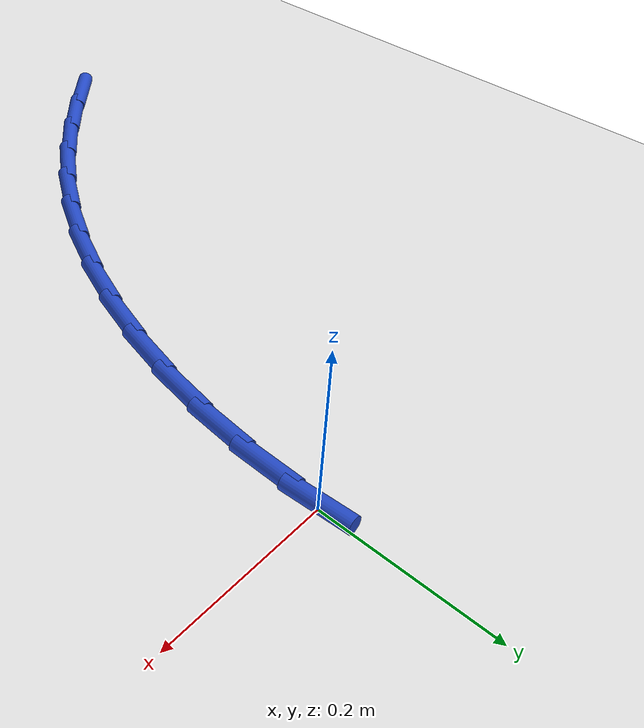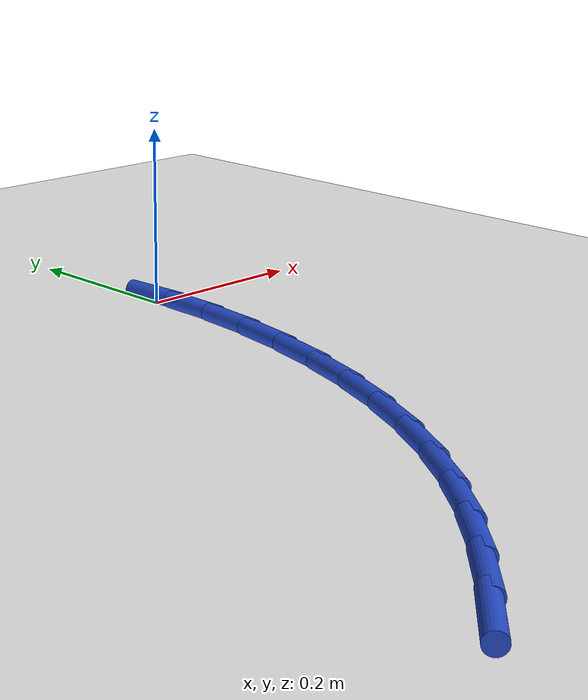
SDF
<sdf version="1.6">
 <world name="default">
  <model name="ground_plane">
   <static>1</static>
   <link name="link">
    <collision name="collision">
     <geometry><plane><normal>0 0 1</normal><size>100 100</size></plane></geometry>
     <surface><friction><ode><mu>100</mu><mu2>50</mu2></ode></friction></surface>
    </collision>
    <visual name="visual">
     <cast_shadows>0</cast_shadows>
     <geometry><plane><normal>0 0 1</normal><size>100 100</size></plane></geometry>
     <material>
      <script><uri>file://media/materials/scripts/gazebo.material</uri><name>Gazebo/WhiteGlow</name></script>
     </material>
    </visual>
   </link>
  </model>
  <model name="line">
   <link name="link_0">
    <pose>3.122502256758253e-17 -1.3877787807814457e-17 0.01 0 1.57 -1.5113080922059479</pose>
    <collision name="collision">
     <geometry><cylinder><radius>0.01</radius><length>0.08</length></cylinder></geometry>
    </collision>
    <visual name="visual">
     <material>
      <script><name>Gazebo/Blue</name><uri>file://media/materials/scripts/gazebo.material</uri></script>
     </material>
     <geometry><cylinder><radius>0.01</radius><length>0.08</length></cylinder></geometry>
    </visual>
   </link>
   <link name="link_97">
    <pose>-0.3396932151286978 -0.7311317947886793 0.01 0 1.57 0.7152479905481852</pose>
    <collision name="collision">
     <geometry><cylinder><radius>0.01</radius><length>0.08</length></cylinder></geometry>
    </collision>
    <visual name="visual">
     <material>
      <script><name>Gazebo/Blue</name><uri>file://media/materials/scripts/gazebo.material</uri></script>
     </material>
     <geometry><cylinder><radius>0.01</radius><length>0.08</length></cylinder></geometry>
    </visual>
   </link>
   <link name="link_98">
    <pose>-0.2917630894548138 -0.6894951223327309 0.01 0 1.57 0.7682784487154332</pose>
    <collision name="collision">
     <geometry><cylinder><radius>0.01</radius><length>0.08</length></cylinder></geometry>
    </collision>
    <visual name="visual">
     <material>
      <script><name>Gazebo/Blue</name><uri>file://media/materials/scripts/gazebo.material</uri></script>
     </material>
     <geometry><cylinder><radius>0.01</radius><length>0.08</length></cylinder></geometry>
    </visual>
   </link>
   <link name="link_99">
    <pose>-0.2464336082911041 -0.6456917197996723 0.01 0 1.57 0.8317342847563973</pose>
    <collision name="collision">
     <geometry><cylinder><radius>0.01</radius><length>0.08</length></cylinder></geometry>
    </collision>
    <visual name="visual">
     <material>
      <script><name>Gazebo/Blue</name><uri>file://media/materials/scripts/gazebo.material</uri></script>
     </material>
     <geometry><cylinder><radius>0.01</radius><length>0.08</length></cylinder></geometry>
    </visual>
   </link>
   <link name="link_100">
    <pose>-0.20411640342574225 -0.5992592537875061 0.01 0 1.57 0.9050557247924207</pose>
    <collision name="collision">
     <geometry><cylinder><radius>0.01</radius><length>0.08</length></cylinder></geometry>
    </collision>
    <visual name="visual">
     <material>
      <script><name>Gazebo/Blue</name><uri>file://media/materials/scripts/gazebo.material</uri></script>
     </material>
     <geometry><cylinder><radius>0.01</radius><length>0.08</length></cylinder></geometry>
    </visual>
   </link>
   <link name="link_101">
    <pose>-0.16522310664690412 -0.5497353908942367 0.01 0 1.57 0.9858927928266926</pose>
    <collision name="collision">
     <geometry><cylinder><radius>0.01</radius><length>0.08</length></cylinder></geometry>
    </collision>
    <visual name="visual">
     <material>
      <script><name>Gazebo/Blue</name><uri>file://media/materials/scripts/gazebo.material</uri></script>
     </material>
     <geometry><cylinder><radius>0.01</radius><length>0.08</length></cylinder></geometry>
    </visual>
   </link>
   <link name="link_102">
    <pose>-0.1301351209450427 -0.4967483553306471 0.01 0 1.57 1.0652530548809056</pose>
    <collision name="collision">
     <geometry><cylinder><radius>0.01</radius><length>0.08</length></cylinder></geometry>
    </collision>
    <visual name="visual">
     <material>
      <script><name>Gazebo/Blue</name><uri>file://media/materials/scripts/gazebo.material</uri></script>
     </material>
     <geometry><cylinder><radius>0.01</radius><length>0.08</length></cylinder></geometry>
    </visual>
   </link>
   <link name="link_103">
    <pose>-0.09902658544275826 -0.4405472799279016 0.01 0 1.57 1.1404239007926933</pose>
    <collision name="collision">
     <geometry><cylinder><radius>0.01</radius><length>0.08</length></cylinder></geometry>
    </collision>
    <visual name="visual">
     <material>
      <script><name>Gazebo/Blue</name><uri>file://media/materials/scripts/gazebo.material</uri></script>
     </material>
     <geometry><cylinder><radius>0.01</radius><length>0.08</length></cylinder></geometry>
    </visual>
   </link>
   <link name="link_104">
    <pose>-0.07198470501882172 -0.3816417298923625 0.01 0 1.57 1.212370367811463</pose>
    <collision name="collision">
     <geometry><cylinder><radius>0.01</radius><length>0.08</length></cylinder></geometry>
    </collision>
    <visual name="visual">
     <material>
      <script><name>Gazebo/Blue</name><uri>file://media/materials/scripts/gazebo.material</uri></script>
     </material>
     <geometry><cylinder><radius>0.01</radius><length>0.08</length></cylinder></geometry>
    </visual>
   </link>
   <link name="link_105">
    <pose>-0.0490963871889388 -0.3205421612527731 0.01 0 1.57 1.2820756840781464</pose>
    <collision name="collision">
     <geometry><cylinder><radius>0.01</radius><length>0.08</length></cylinder></geometry>
    </collision>
    <visual name="visual">
     <material>
      <script><name>Gazebo/Blue</name><uri>file://media/materials/scripts/gazebo.material</uri></script>
     </material>
     <geometry><cylinder><radius>0.01</radius><length>0.08</length></cylinder></geometry>
    </visual>
   </link>
   <link name="link_106">
    <pose>-0.030448539468814012 -0.25775903003787276 0.01 0 1.57 1.3505191737432127</pose>
    <collision name="collision">
     <geometry><cylinder><radius>0.01</radius><length>0.08</length></cylinder></geometry>
    </collision>
    <visual name="visual">
     <material>
      <script><name>Gazebo/Blue</name><uri>file://media/materials/scripts/gazebo.material</uri></script>
     </material>
     <geometry><cylinder><radius>0.01</radius><length>0.08</length></cylinder></geometry>
    </visual>
   </link>
   <link name="link_107">
    <pose>-0.016128069374152825 -0.19380279227640457 0.01 0 1.57 1.4186789143251828</pose>
    <collision name="collision">
     <geometry><cylinder><radius>0.01</radius><length>0.08</length></cylinder></geometry>
    </collision>
    <visual name="visual">
     <material>
      <script><name>Gazebo/Blue</name><uri>file://media/materials/scripts/gazebo.material</uri></script>
     </material>
     <geometry><cylinder><radius>0.01</radius><length>0.08</length></cylinder></geometry>
    </visual>
   </link>
   <link name="link_108">
    <pose>-0.006221884420659964 -0.12918390399710833 0.01 0 1.57 1.4875416037106688</pose>
    <collision name="collision">
     <geometry><cylinder><radius>0.01</radius><length>0.08</length></cylinder></geometry>
    </collision>
    <visual name="visual">
     <material>
      <script><name>Gazebo/Blue</name><uri>file://media/materials/scripts/gazebo.material</uri></script>
     </material>
     <geometry><cylinder><radius>0.01</radius><length>0.08</length></cylinder></geometry>
    </visual>
   </link>
   <link name="link_109">
    <pose>-0.0008168921240407079 -0.06441282122872688 0.01 0 1.57 1.5581148711885193</pose>
    <collision name="collision">
     <geometry><cylinder><radius>0.01</radius><length>0.08</length></cylinder></geometry>
    </collision>
    <visual name="visual">
     <material>
      <script><name>Gazebo/Blue</name><uri>file://media/materials/scripts/gazebo.material</uri></script>
     </material>
     <geometry><cylinder><radius>0.01</radius><length>0.08</length></cylinder></geometry>
    </visual>
   </link>
  </model>
 </world>
</sdf>
